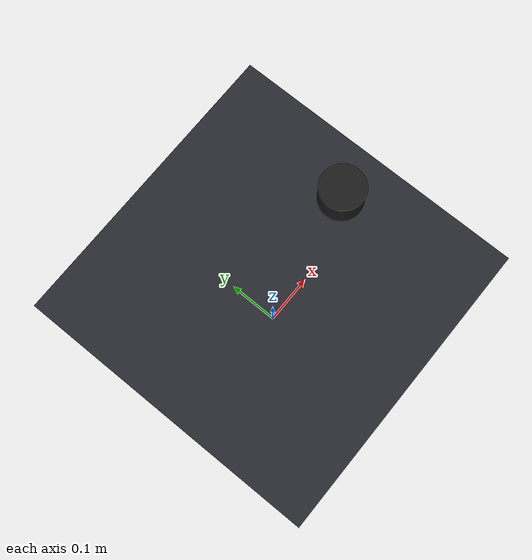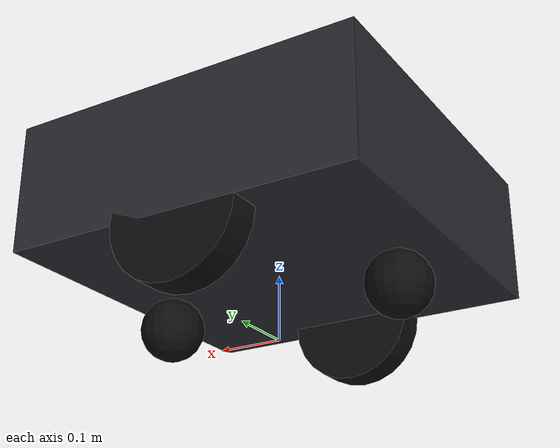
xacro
<?xml version="1.0"?>
<robot xmlns:xacro="http://www.ros.org/wiki/xacro" name="agribot_base">

  <xacro:property name="base_len" value="0.55"/>
  <xacro:property name="base_wid" value="0.55"/>
  <xacro:property name="base_hgt" value="0.20"/>
  <xacro:property name="wheel_r"  value="0.10"/>
  <xacro:property name="wheel_w"  value="0.05"/>
  <xacro:property name="wheel_sep" value="0.50"/>

  <material name="chassis"><color rgba="0.15 0.15 0.18 1"/></material>
  <material name="wheel"><color rgba="0.05 0.05 0.05 1"/></material>
  <material name="sensor"><color rgba="0.1 0.1 0.1 1"/></material>

  <!-- footprint (nav frame) -->
  <link name="base_footprint"/>

  <link name="base_link">
    <visual>
      <geometry><box size="${base_len} ${base_wid} ${base_hgt}"/></geometry>
      <material name="chassis"/>
    </visual>
    <collision>
      <geometry><box size="${base_len} ${base_wid} ${base_hgt}"/></geometry>
    </collision>
    <inertial>
      <mass value="30.0"/>
      <inertia ixx="1.0" iyy="1.0" izz="1.5" ixy="0" ixz="0" iyz="0"/>
    </inertial>
  </link>
  <joint name="base_joint" type="fixed">
    <parent link="base_footprint"/>
    <child link="base_link"/>
    <origin xyz="0 0 ${wheel_r + base_hgt/2}"/>
  </joint>

  <!-- drive wheels -->
  <xacro:macro name="wheel" params="name y">
    <link name="${name}_wheel">
      <visual>
        <origin rpy="1.5708 0 0"/>
        <geometry><cylinder radius="${wheel_r}" length="${wheel_w}"/></geometry>
        <material name="wheel"/>
      </visual>
      <collision>
        <origin rpy="1.5708 0 0"/>
        <geometry><cylinder radius="${wheel_r}" length="${wheel_w}"/></geometry>
      </collision>
      <inertial>
        <mass value="1.0"/>
        <inertia ixx="0.005" iyy="0.005" izz="0.008" ixy="0" ixz="0" iyz="0"/>
      </inertial>
    </link>
    <joint name="${name}_wheel_joint" type="continuous">
      <parent link="base_link"/>
      <child link="${name}_wheel"/>
      <origin xyz="0 ${y} ${-base_hgt/2}"/>
      <axis xyz="0 1 0"/>
    </joint>
  </xacro:macro>
  <xacro:wheel name="left"  y="${ wheel_sep/2}"/>
  <xacro:wheel name="right" y="${-wheel_sep/2}"/>

  <!-- passive caster spheres (front/back) -->
  <xacro:macro name="caster" params="name x">
    <link name="${name}_caster">
      <visual><geometry><sphere radius="0.05"/></geometry><material name="wheel"/></visual>
      <collision><geometry><sphere radius="0.05"/></geometry></collision>
      <inertial><mass value="0.2"/>
        <inertia ixx="0.0002" iyy="0.0002" izz="0.0002" ixy="0" ixz="0" iyz="0"/></inertial>
    </link>
    <joint name="${name}_caster_joint" type="fixed">
      <parent link="base_link"/>
      <child link="${name}_caster"/>
      <origin xyz="${x} 0 ${-base_hgt/2 - wheel_r + 0.05}"/>
    </joint>
  </xacro:macro>
  <xacro:caster name="front" x="${ base_len/2 - 0.08}"/>
  <xacro:caster name="rear"  x="${-base_len/2 + 0.08}"/>

  <!-- 2D lidar on a small mast -->
  <link name="lidar_link">
    <visual><geometry><cylinder radius="0.04" length="0.05"/></geometry><material name="sensor"/></visual>
    <collision><geometry><cylinder radius="0.04" length="0.05"/></geometry></collision>
    <inertial><mass value="0.1"/>
      <inertia ixx="0.0001" iyy="0.0001" izz="0.0001" ixy="0" ixz="0" iyz="0"/></inertial>
  </link>
  <joint name="lidar_joint" type="fixed">
    <parent link="base_link"/>
    <child link="lidar_link"/>
    <origin xyz="${base_len/2 - 0.10} 0 ${base_hgt/2 + 0.05}"/>
  </joint>

  <!-- arm mounting plate -->
  <link name="mount_link"/>
  <joint name="mount_joint" type="fixed">
    <parent link="base_link"/>
    <child link="mount_link"/>
    <origin xyz="-0.05 0 ${base_hgt/2}"/>
  </joint>

  <!-- ============================ Gazebo ============================ -->
  <gazebo>
    <plugin filename="ignition-gazebo-diff-drive-system"
            name="ignition::gazebo::systems::DiffDrive">
      <left_joint>left_wheel_joint</left_joint>
      <right_joint>right_wheel_joint</right_joint>
      <wheel_separation>${wheel_sep}</wheel_separation>
      <wheel_radius>${wheel_r}</wheel_radius>
      <topic>cmd_vel</topic>
      <odom_topic>odom</odom_topic>
      <frame_id>odom</frame_id>
      <child_frame_id>base_footprint</child_frame_id>
      <odom_publish_frequency>30</odom_publish_frequency>
      <max_linear_acceleration>1.5</max_linear_acceleration>
    </plugin>
    <plugin filename="ignition-gazebo-joint-state-publisher-system"
            name="ignition::gazebo::systems::JointStatePublisher">
      <topic>joint_states</topic>
    </plugin>
  </gazebo>

  <gazebo reference="lidar_link">
    <sensor name="lidar" type="gpu_lidar">
      <topic>scan</topic>
      <update_rate>10</update_rate>
      <always_on>1</always_on>
      <ignition_frame_id>lidar_link</ignition_frame_id>
      <lidar>
        <scan>
          <horizontal>
            <samples>360</samples>
            <resolution>1</resolution>
            <min_angle>-3.14159</min_angle>
            <max_angle>3.14159</max_angle>
          </horizontal>
        </scan>
        <range>
          <min>0.12</min>
          <max>8.0</max>
          <resolution>0.01</resolution>
        </range>
      </lidar>
    </sensor>
  </gazebo>

  <gazebo reference="base_link"><material>Gazebo/DarkGrey</material></gazebo>
  <gazebo reference="left_wheel"><material>Gazebo/Black</material></gazebo>
  <gazebo reference="right_wheel"><material>Gazebo/Black</material></gazebo>

</robot>
